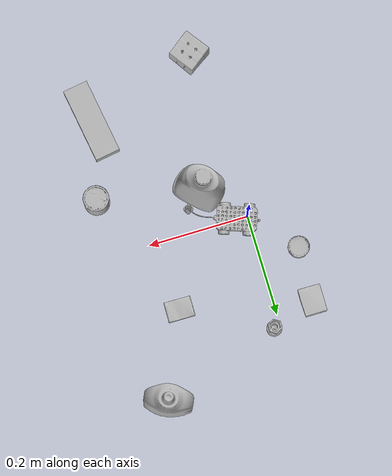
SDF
<sdf version="1.4">
  <world name="default">
    <light name="light1" type="point">
      <pose>0 0 1 0 0 0</pose>
      <diffuse>3 3 3 1</diffuse>
      <specular>3 3 3 1</specular>
    </light>
    <light name="light2" type="point">
      <pose>0 0.5 2 0 0 0</pose>
      <diffuse>1 1 1 1</diffuse>
      <specular>1 1 1 1</specular>
    </light>
    <light name="light3" type="point">
      <pose>0 0.5 2 0 0 0</pose>
      <diffuse>3 3 3 1</diffuse>
      <specular>3 3 3 1</specular>
    </light>
    <scene>
      <ambient>0.7 0.7 0.7</ambient>
    </scene>
    <model name="bottle1">
      <link name="link_bottle1">
        <collision name="default">
          <geometry>
            <mesh>
              <uri>model://mustard_bottle/collision_meshes/collision.obj</uri>
              <scale>1.0 1.0 1.0</scale>
            </mesh>
          </geometry>
          <surface>
            <friction>
              <ode>
                <mu>0.5</mu>
                <mu2>0.5</mu2>
              </ode>
            </friction>
          <contact>
        <ode>
            <max_vel>0</max_vel>
            <min_depth>0.0001</min_depth>
            <kp>1e8</kp>
        </ode>
    </contact></surface>
        </collision>
        <visual name="default">
          <geometry>
            <mesh>
              <uri>model://mustard_bottle/visual_meshes/visual.dae</uri>
              <scale>1.0 1.0 1.0</scale>
            </mesh>
          </geometry>
        </visual>
        <inertial>
          <mass>0.7866348028182983</mass>
          <pose>0.0005032454500906169 -0.00015647400869056582 -0.0174757931381464 0.00041823249995057767 0.0009465787698991903 0.02485370186883952</pose>
          <inertia>
            <ixx>0.0021843775</ixx>
            <iyy>0.0019166061</iyy>
            <izz>0.0005756938</izz>
            <ixy>0</ixy>
            <ixz>0</ixz>
            <iyz>0</iyz>
          </inertia>
        </inertial>
      </link>
      <pose>0.25043392181396484 0.3030356764793396 0.09583088755607605 -0.012050859258261567 -0.00488964784034695 1.1384909085084558</pose>
    </model>
    <model name="bottle2">
      <link name="link_bottle2">
        <collision name="default">
          <geometry>
            <mesh>
              <uri>model://bleach_cleanser/collision_meshes/collision.obj</uri>
              <scale>1.0 1.0 1.0</scale>
            </mesh>
          </geometry>
          <surface>
            <friction>
              <ode>
                <mu>0.5</mu>
                <mu2>0.5</mu2>
              </ode>
            </friction>
          <contact>
        <ode>
            <max_vel>0</max_vel>
            <min_depth>0.0001</min_depth>
            <kp>1e8</kp>
        </ode>
    </contact></surface>
        </collision>
        <visual name="default">
          <geometry>
            <mesh>
              <uri>model://bleach_cleanser/visual_meshes/visual.dae</uri>
              <scale>1.0 1.0 1.0</scale>
            </mesh>
          </geometry>
        </visual>
        <inertial>
          <mass>1.5776710510253906</mass>
          <pose>0.00012193183647468686 0.003783883061259985 -0.02442161552608013 -0.07381671362264838 0.0004201168949340897 -0.006875045535038288</pose>
          <inertia>
            <ixx>0.007678755</ixx>
            <iyy>0.0071554743</iyy>
            <izz>0.0013128674</izz>
            <ixy>0</ixy>
            <ixz>0</ixz>
            <iyz>0</iyz>
          </inertia>
        </inertial>
      </link>
      <pose>0.07559145241975784 -0.07651171088218689 0.12578412890434265 -0.0002006715981991489 1.613334424058765e-05 0.7704607497267889</pose>
    </model>
    <model name="toy1">
      <link name="link_toy1">
        <collision name="default">
          <geometry>
            <mesh>
              <uri>model://g_lego_duplo/collision_meshes/collision.obj</uri>
              <scale>0.5 0.5 0.5</scale>
            </mesh>
          </geometry>
          <surface>
            <friction>
              <ode>
                <mu>0.5</mu>
                <mu2>0.5</mu2>
              </ode>
            </friction>
          <contact>
        <ode>
            <max_vel>0</max_vel>
            <min_depth>0.0001</min_depth>
            <kp>1e8</kp>
        </ode>
    </contact></surface>
        </collision>
        <visual name="default">
          <geometry>
            <mesh>
              <uri>model://g_lego_duplo/visual_meshes/visual.dae</uri>
              <scale>0.5 0.5 0.5</scale>
            </mesh>
          </geometry>
        </visual>
        <inertial>
          <mass>0.06580430269241333</mass>
          <pose>-0.025023844093084335 0.0008777321199886501 0.0019403373589739203 0.010962977320182745 0.038108249742412996 -0.09653031078073558</pose>
          <inertia>
            <ixx>2.3837789e-05</ixx>
            <iyy>7.206929e-05</iyy>
            <izz>9.016138e-05</izz>
            <ixy>0</ixy>
            <ixz>0</ixz>
            <iyz>0</iyz>
          </inertia>
        </inertial>
      </link>
      <pose>0.04949299991130829 -0.01261860504746437 0.014898423105478287 0.0003790309223719659 -0.0020771309198324484 -0.3468562265997645</pose>
    </model>
    <model name="toy2">
      <link name="link_toy2">
        <collision name="default">
          <geometry>
            <mesh>
              <uri>model://c_toy_airplane/collision_meshes/collision.obj</uri>
              <scale>1.0 1.0 1.0</scale>
            </mesh>
          </geometry>
          <surface>
            <friction>
              <ode>
                <mu>0.5</mu>
                <mu2>0.5</mu2>
              </ode>
            </friction>
          <contact>
        <ode>
            <max_vel>0</max_vel>
            <min_depth>0.0001</min_depth>
            <kp>1e8</kp>
        </ode>
    </contact></surface>
        </collision>
        <visual name="default">
          <geometry>
            <mesh>
              <uri>model://c_toy_airplane/visual_meshes/visual.dae</uri>
              <scale>1.0 1.0 1.0</scale>
            </mesh>
          </geometry>
        </visual>
        <inertial>
          <mass>0.012545601464807987</mass>
          <pose>-0.00023024262918625027 -4.4310368707556336e-07 -0.0060805282555520535 -0.006192226732466636 -0.01679790977646328 0.7654621556572541</pose>
          <inertia>
            <ixx>5.760684e-06</ixx>
            <iyy>5.744425e-06</iyy>
            <izz>1.3524945e-06</izz>
            <ixy>0</ixy>
            <ixz>0</ixz>
            <iyz>0</iyz>
          </inertia>
        </inertial>
      </link>
      <pose>0.013289770111441612 0.22528795897960663 0.033512718975543976 -0.00017428411817291622 -1.782589058152937e-05 2.840462214817597</pose>
    </model>
    <model name="can1">
      <link name="link_can1">
        <collision name="default">
          <geometry>
            <mesh>
              <uri>model://tuna_fish_can/collision_meshes/collision.obj</uri>
              <scale>0.5 0.5 0.5</scale>
            </mesh>
          </geometry>
          <surface>
            <friction>
              <ode>
                <mu>0.5</mu>
                <mu2>0.5</mu2>
              </ode>
            </friction>
          <contact>
        <ode>
            <max_vel>0</max_vel>
            <min_depth>0.0001</min_depth>
            <kp>1e8</kp>
        </ode>
    </contact></surface>
        </collision>
        <visual name="default">
          <geometry>
            <mesh>
              <uri>model://tuna_fish_can/visual_meshes/visual.dae</uri>
              <scale>0.5 0.5 0.5</scale>
            </mesh>
          </geometry>
        </visual>
        <inertial>
          <mass>0.0216250978410244</mass>
          <pose>-2.036200021393597e-05 -7.256498065544292e-06 -0.0005269024986773729 -0.0017944779234091367 0.00017161663308651613 0.24053681665098822</pose>
          <inertia>
            <ixx>2.923745e-06</ixx>
            <iyy>2.9115588e-06</iyy>
            <izz>5.002946e-06</izz>
            <ixy>0</ixy>
            <ixz>0</ixz>
            <iyz>0</iyz>
          </inertia>
        </inertial>
      </link>
      <pose>-0.0783885195851326 0.08655218034982681 0.00851999782025814 4.20682513347162e-09 -6.735994744293212e-09 -1.2214707480617766</pose>
    </model>
    <model name="can2">
      <link name="link_can2">
        <collision name="default">
          <geometry>
            <mesh>
              <uri>model://master_chef_can/collision_meshes/collision.obj</uri>
              <scale>0.5 0.5 0.5</scale>
            </mesh>
          </geometry>
          <surface>
            <friction>
              <ode>
                <mu>0.5</mu>
                <mu2>0.5</mu2>
              </ode>
            </friction>
          <contact>
        <ode>
            <max_vel>0</max_vel>
            <min_depth>0.0001</min_depth>
            <kp>1e8</kp>
        </ode>
    </contact></surface>
        </collision>
        <visual name="default">
          <geometry>
            <mesh>
              <uri>model://master_chef_can/visual_meshes/visual.dae</uri>
              <scale>0.5 0.5 0.5</scale>
            </mesh>
          </geometry>
        </visual>
        <inertial>
          <mass>0.16779577732086182</mass>
          <pose>-4.661964703700505e-05 1.3926845099376806e-07 -5.080012488178909e-05 -0.001799515621871614 0.0006479176547847844 -0.610266079213139</pose>
          <inertia>
            <ixx>9.848473e-05</ixx>
            <iyy>9.77599e-05</iyy>
            <izz>5.442035e-05</izz>
            <ixy>0</ixy>
            <ixz>0</ixz>
            <iyz>0</iyz>
          </inertia>
        </inertial>
      </link>
      <pose>0.27379998564720154 -0.11138103902339935 0.03530200198292732 -1.665435436741975e-06 -9.869234925570414e-07 3.028562500405296</pose>
    </model>
    <model name="box1">
      <link name="link_box1">
        <collision name="default">
          <geometry>
            <mesh>
              <uri>model://rubiks_cube/collision_meshes/collision.obj</uri>
              <scale>1.0 1.0 1.0</scale>
            </mesh>
          </geometry>
          <surface>
            <friction>
              <ode>
                <mu>0.5</mu>
                <mu2>0.5</mu2>
              </ode>
            </friction>
          <contact>
        <ode>
            <max_vel>0</max_vel>
            <min_depth>0.0001</min_depth>
            <kp>1e8</kp>
        </ode>
    </contact></surface>
        </collision>
        <visual name="default">
          <geometry>
            <mesh>
              <uri>model://rubiks_cube/visual_meshes/visual.dae</uri>
              <scale>1.0 1.0 1.0</scale>
            </mesh>
          </geometry>
        </visual>
        <inertial>
          <mass>0.232398122549057</mass>
          <pose>2.6721041649580002e-05 5.256967051536776e-05 -7.264316082000732e-06 -0.05467303663832053 -0.0981402329670775 -0.034454960240128486</pose>
          <inertia>
            <ixx>0.00012841556</ixx>
            <iyy>0.00012781669</iyy>
            <izz>0.00012947968</izz>
            <ixy>0</ixy>
            <ixz>0</ixz>
            <iyz>0</iyz>
          </inertia>
        </inertial>
      </link>
      <pose>0.01712910272181034 -0.3394306004047394 0.028678961098194122 -3.3714760955698868e-06 -1.31873893437023e-06 -2.5194903887912994</pose>
    </model>
    <model name="box2">
      <link name="link_box2">
        <collision name="default">
          <geometry>
            <mesh>
              <uri>model://jenga/collision_meshes/collision.obj</uri>
              <scale>1.0 1.0 1.0</scale>
            </mesh>
          </geometry>
          <surface>
            <friction>
              <ode>
                <mu>0.5</mu>
                <mu2>0.5</mu2>
              </ode>
            </friction>
          <contact>
        <ode>
            <max_vel>0</max_vel>
            <min_depth>0.0001</min_depth>
            <kp>1e8</kp>
        </ode>
    </contact></surface>
        </collision>
        <visual name="default">
          <geometry>
            <mesh>
              <uri>model://jenga/visual_meshes/visual.dae</uri>
              <scale>1.0 1.0 1.0</scale>
            </mesh>
          </geometry>
        </visual>
        <inertial>
          <mass>0.2088489830493927</mass>
          <pose>-2.502855807051674e-07 -0.0001025000965455547 -4.092339804628864e-05 0.0 -7.342154049184251e-07 0.0</pose>
          <inertia>
            <ixx>5.7793575e-05</ixx>
            <iyy>0.00039160773</iyy>
            <izz>0.00041807455</izz>
            <ixy>0</ixy>
            <ixz>0</ixz>
            <iyz>0</iyz>
          </inertia>
        </inertial>
      </link>
      <pose>0.23887696862220764 -0.2663092017173767 0.014999995008111 6.250014023728348e-09 7.1146097490922214e-09 -1.4141272829833689</pose>
    </model>
    <model name="box3">
      <link name="link_box3">
        <collision name="default">
          <geometry>
            <mesh>
              <uri>model://cracker_box/collision_meshes/collision.obj</uri>
              <scale>0.25 0.25 0.25</scale>
            </mesh>
          </geometry>
          <surface>
            <friction>
              <ode>
                <mu>0.5</mu>
                <mu2>0.5</mu2>
              </ode>
            </friction>
          <contact>
        <ode>
            <max_vel>0</max_vel>
            <min_depth>0.0001</min_depth>
            <kp>1e8</kp>
        </ode>
    </contact></surface>
        </collision>
        <visual name="default">
          <geometry>
            <mesh>
              <uri>model://cracker_box/visual_meshes/visual.dae</uri>
              <scale>0.25 0.25 0.25</scale>
            </mesh>
          </geometry>
        </visual>
        <inertial>
          <mass>0.039105094969272614</mass>
          <pose>0.00023660340229980648 6.358561222441494e-05 -0.00042573834070935845 -0.0003162078884583708 -0.011106488668689832 0.0025467950032832675</pose>
          <inertia>
            <ixx>6.216619e-06</ixx>
            <iyy>1.0264859e-05</iyy>
            <izz>1.4648894e-05</izz>
            <ixy>0</ixy>
            <ixz>0</ixz>
            <iyz>0</iyz>
          </inertia>
        </inertial>
      </link>
      <pose>0.17978817224502563 0.1365402191877365 0.009120447561144829 -0.011787920421585283 -0.007367155737169092 3.1254059284905438</pose>
    </model>
    <model name="box4">
      <link name="link_box4">
        <collision name="default">
          <geometry>
            <mesh>
              <uri>model://pudding_box/collision_meshes/collision.obj</uri>
              <scale>0.5 0.5 0.5</scale>
            </mesh>
          </geometry>
          <surface>
            <friction>
              <ode>
                <mu>0.5</mu>
                <mu2>0.5</mu2>
              </ode>
            </friction>
          <contact>
        <ode>
            <max_vel>0</max_vel>
            <min_depth>0.0001</min_depth>
            <kp>1e8</kp>
        </ode>
    </contact></surface>
        </collision>
        <visual name="default">
          <geometry>
            <mesh>
              <uri>model://pudding_box/visual_meshes/visual.dae</uri>
              <scale>0.5 0.5 0.5</scale>
            </mesh>
          </geometry>
        </visual>
        <inertial>
          <mass>0.03813362866640091</mass>
          <pose>0.00024474109522998333 0.00040339428232982755 -0.0002594413817860186 0.005213101815861678 -0.006603796390356506 0.020079825165494957</pose>
          <inertia>
            <ixx>1.0777026e-05</ixx>
            <iyy>7.25086e-06</iyy>
            <izz>1.5915095e-05</izz>
            <ixy>0</ixy>
            <ixz>0</ixz>
            <iyz>0</iyz>
          </inertia>
        </inertial>
      </link>
      <pose>-0.07334261387586594 0.19427728652954102 0.009862905368208885 0.022348465622606846 -0.011391758602567765 -0.00803027437085945</pose>
    </model>
  <physics type="ode">
      <max_contacts>50</max_contacts>
      <ode>
        <solver>
          <type>quick</type>
          <iters>75</iters>
        </solver>
        <constraints>
          <contact_max_correcting_vel>0</contact_max_correcting_vel>
          <contact_surface_layer>0</contact_surface_layer>
        </constraints>
      </ode>
    </physics></world>
</sdf>
